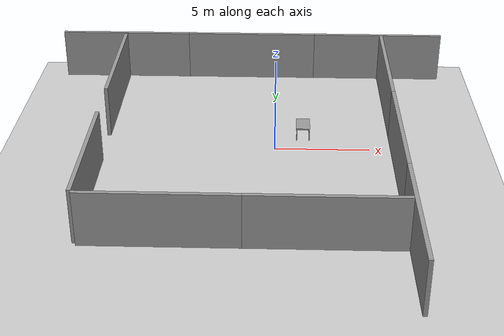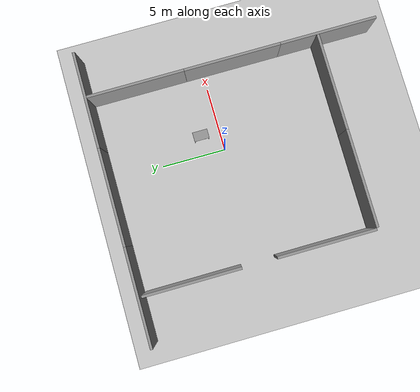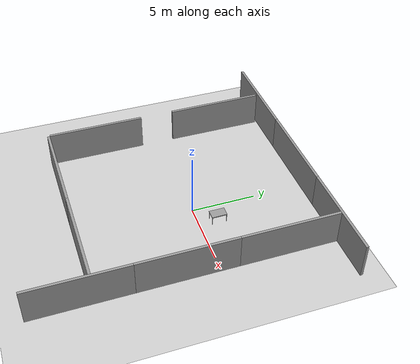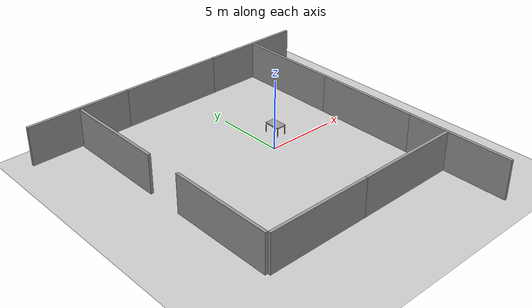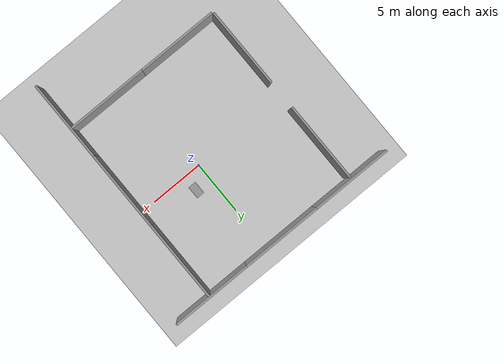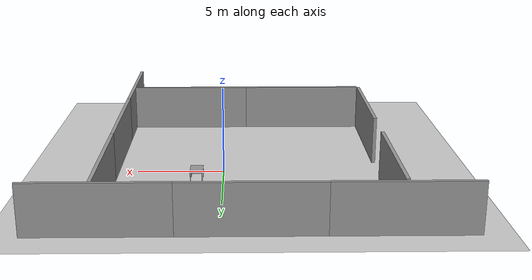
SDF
<sdf version="1.4">
 <world name="default">
  <include><uri>model://ground_plane</uri></include>
  <include><uri>model://sun</uri></include>
  <model name="lerhamn_table">
   <link name="link_1">
    <pose>1.5 1.5 0 0 -0 0</pose>
    <inertial>
     <mass>1</mass>
     <inertia>
      <ixx>0.166667</ixx>
      <ixy>0</ixy>
      <ixz>0</ixz>
      <iyy>0.166667</iyy>
      <iyz>0</iyz>
      <izz>0.166667</izz>
     </inertia>
    </inertial>
    <visual name="visual">
     <geometry>
      <mesh>
       <uri>/home/yisheng/catkin_ws/src/mybot_gazebo/worlds/lerhamn_table.dae</uri>
       <scale>0.001 0.001 0.001</scale>
      </mesh>
     </geometry>
     <material>
      <lighting>1</lighting>
      <script><uri>file://media/materials/scripts/gazebo.material</uri><name>Gazebo/Grey</name></script>
      <ambient>0.3 0.3 0.3 1</ambient>
      <diffuse>0.7 0.7 0.7 1</diffuse>
      <specular>0.01 0.01 0.01 1</specular>
      <emissive>0 0 0 1</emissive>
     </material>
    </visual>
    <collision name="collision">
     <geometry>
      <mesh>
       <uri>/home/yisheng/catkin_ws/src/mybot_gazebo/worlds/lerhamn_table.dae</uri>
       <scale>0.001 0.001 0.001</scale>
      </mesh>
     </geometry>
     <surface>
      <friction>
       <ode><mu>1</mu><mu2>1</mu2><fdir1>0 0 0</fdir1><slip1>0</slip1><slip2>0</slip2></ode>
       <torsional>
        <coefficient>1</coefficient>
        <patch_radius>0</patch_radius>
        <surface_radius>0</surface_radius>
        <use_patch_radius>1</use_patch_radius>
        <ode><slip>0</slip></ode>
       </torsional>
      </friction>
      <bounce><restitution_coefficient>0</restitution_coefficient><threshold>1e+06</threshold></bounce>
      <contact>
       <collide_without_contact>0</collide_without_contact>
       <collide_without_contact_bitmask>1</collide_without_contact_bitmask>
       <collide_bitmask>1</collide_bitmask>
       <ode>
        <soft_cfm>0</soft_cfm>
        <soft_erp>0.2</soft_erp>
        <kp>1e+13</kp>
        <kd>1</kd>
        <max_vel>0.01</max_vel>
        <min_depth>0</min_depth>
       </ode>
       <bullet>
        <split_impulse>1</split_impulse>
        <split_impulse_penetration_threshold>-0.01</split_impulse_penetration_threshold>
        <soft_cfm>0</soft_cfm>
        <soft_erp>0.2</soft_erp>
        <kp>1e+13</kp>
        <kd>1</kd>
       </bullet>
      </contact>
     </surface>
    </collision>
   </link>
   <static>0</static>
  </model>
  <model name="grey_wall">
   <static>1</static>
   <link name="link">
    <pose>0 0 1.4 0 -0 0</pose>
    <collision name="collision"><geometry><box><size>7.5 0.2 2.8</size></box></geometry></collision>
    <visual name="visual">
     <cast_shadows>0</cast_shadows>
     <geometry><box><size>7.5 0.2 2.8</size></box></geometry>
     <material>
      <script>
       <uri>model://grey_wall/materials/scripts</uri>
       <uri>model://grey_wall/materials/textures</uri>
       <name>vrc/grey_wall</name>
      </script>
     </material>
    </visual>
   </link>
   <pose>6 9 0 0 -0 0</pose>
  </model>
  <model name="grey_wall_clone">
   <static>1</static>
   <link name="link">
    <pose>0 0 1.4 0 -0 0</pose>
    <collision name="collision"><geometry><box><size>7.5 0.2 2.8</size></box></geometry></collision>
    <visual name="visual">
     <cast_shadows>0</cast_shadows>
     <geometry><box><size>7.5 0.2 2.8</size></box></geometry>
     <material>
      <script>
       <uri>model://grey_wall/materials/scripts</uri>
       <uri>model://grey_wall/materials/textures</uri>
       <name>vrc/grey_wall</name>
      </script>
     </material>
    </visual>
   </link>
   <pose>-1.5 9 0 0 -0 0</pose>
  </model>
  <model name="grey_wall_clone_0">
   <static>1</static>
   <link name="link">
    <pose>0 0 1.4 0 -0 0</pose>
    <collision name="collision"><geometry><box><size>7.5 0.2 2.8</size></box></geometry></collision>
    <visual name="visual">
     <cast_shadows>0</cast_shadows>
     <geometry><box><size>7.5 0.2 2.8</size></box></geometry>
     <material>
      <script>
       <uri>model://grey_wall/materials/scripts</uri>
       <uri>model://grey_wall/materials/textures</uri>
       <name>vrc/grey_wall</name>
      </script>
     </material>
    </visual>
   </link>
   <pose>-9 9 0 0 -0 0</pose>
  </model>
  <model name="grey_wall_clone_1">
   <static>1</static>
   <link name="link">
    <pose>0 0 1.4 0 -0 0</pose>
    <collision name="collision"><geometry><box><size>7.5 0.2 2.8</size></box></geometry></collision>
    <visual name="visual">
     <cast_shadows>0</cast_shadows>
     <geometry><box><size>7.5 0.2 2.8</size></box></geometry>
     <material>
      <script>
       <uri>model://grey_wall/materials/scripts</uri>
       <uri>model://grey_wall/materials/textures</uri>
       <name>vrc/grey_wall</name>
      </script>
     </material>
    </visual>
   </link>
   <pose>-9 5 0 0 -0 1.57079</pose>
  </model>
  <model name="grey_wall_clone_2">
   <static>1</static>
   <link name="link">
    <pose>0 0 1.4 0 -0 0</pose>
    <collision name="collision"><geometry><box><size>7.5 0.2 2.8</size></box></geometry></collision>
    <visual name="visual">
     <cast_shadows>0</cast_shadows>
     <geometry><box><size>7.5 0.2 2.8</size></box></geometry>
     <material>
      <script>
       <uri>model://grey_wall/materials/scripts</uri>
       <uri>model://grey_wall/materials/textures</uri>
       <name>vrc/grey_wall</name>
      </script>
     </material>
    </visual>
   </link>
   <pose>-9 -5.15 0 0 -0 1.57079</pose>
  </model>
  <model name="grey_wall_clone_3">
   <static>1</static>
   <link name="link">
    <pose>0 0 1.4 0 -0 0</pose>
    <collision name="collision"><geometry><box><size>7.5 0.2 2.8</size></box></geometry></collision>
    <visual name="visual">
     <cast_shadows>0</cast_shadows>
     <geometry><box><size>7.5 0.2 2.8</size></box></geometry>
     <material>
      <script>
       <uri>model://grey_wall/materials/scripts</uri>
       <uri>model://grey_wall/materials/textures</uri>
       <name>vrc/grey_wall</name>
      </script>
     </material>
    </visual>
   </link>
   <pose>-5.14999 -9 0 0 -0 0</pose>
  </model>
  <model name="grey_wall_clone_4">
   <static>1</static>
   <link name="link">
    <pose>0 0 1.4 0 -0 0</pose>
    <collision name="collision"><geometry><box><size>7.5 0.2 2.8</size></box></geometry></collision>
    <visual name="visual">
     <cast_shadows>0</cast_shadows>
     <geometry><box><size>7.5 0.2 2.8</size></box></geometry>
     <material>
      <script>
       <uri>model://grey_wall/materials/scripts</uri>
       <uri>model://grey_wall/materials/textures</uri>
       <name>vrc/grey_wall</name>
      </script>
     </material>
    </visual>
   </link>
   <pose>2.35001 -9 0 0 -0 0</pose>
  </model>
  <model name="grey_wall_clone_5">
   <static>1</static>
   <link name="link">
    <pose>0 0 1.4 0 -0 0</pose>
    <collision name="collision"><geometry><box><size>7.5 0.2 2.8</size></box></geometry></collision>
    <visual name="visual">
     <cast_shadows>0</cast_shadows>
     <geometry><box><size>7.5 0.2 2.8</size></box></geometry>
     <material>
      <script>
       <uri>model://grey_wall/materials/scripts</uri>
       <uri>model://grey_wall/materials/textures</uri>
       <name>vrc/grey_wall</name>
      </script>
     </material>
    </visual>
   </link>
   <pose>6.20003 5.15 0 0 -0 1.57079</pose>
  </model>
  <model name="grey_wall_clone_6">
   <static>1</static>
   <link name="link">
    <pose>0 0 1.4 0 -0 0</pose>
    <collision name="collision"><geometry><box><size>7.5 0.2 2.8</size></box></geometry></collision>
    <visual name="visual">
     <cast_shadows>0</cast_shadows>
     <geometry><box><size>7.5 0.2 2.8</size></box></geometry>
     <material>
      <script>
       <uri>model://grey_wall/materials/scripts</uri>
       <uri>model://grey_wall/materials/textures</uri>
       <name>vrc/grey_wall</name>
      </script>
     </material>
    </visual>
   </link>
   <pose>6.20003 -2.35 0 0 -0 1.57079</pose>
  </model>
  <model name="grey_wall_clone_7">
   <static>1</static>
   <link name="link">
    <pose>0 0 1.4 0 -0 0</pose>
    <collision name="collision"><geometry><box><size>7.5 0.2 2.8</size></box></geometry></collision>
    <visual name="visual">
     <cast_shadows>0</cast_shadows>
     <geometry><box><size>7.5 0.2 2.8</size></box></geometry>
     <material>
      <script>
       <uri>model://grey_wall/materials/scripts</uri>
       <uri>model://grey_wall/materials/textures</uri>
       <name>vrc/grey_wall</name>
      </script>
     </material>
    </visual>
   </link>
   <pose>6.20003 -9.85 0 0 -0 1.57079</pose>
  </model>
 </world>
</sdf>
